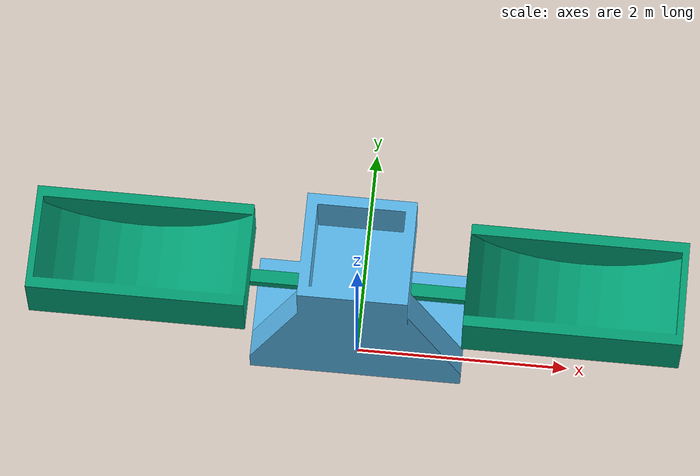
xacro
<?xml version="1.0"?>

<robot name="eval_weight_balance">

    <material name="OA">
        <color rgba="0.101960784 0.42745098 0.588235294 0.333"/>
    </material>

    <gazebo reference="link_base">
        <turnGravityOff>false</turnGravityOff>
    </gazebo>
    <gazebo reference="link_eval_weight_balance_body">
        <turnGravityOff>true</turnGravityOff>
    </gazebo>
    <gazebo reference="link_eval_weight_balance_suspension">
        <turnGravityOff>false</turnGravityOff>
    </gazebo>
    <gazebo>
        <plugin name="gazebo_ros_template" filename="libgazebo_ros_template.so"/>
        <plugin name="gazebo_ros_control" filename="libgazebo_ros_control.so">
        </plugin>
    </gazebo>

    <link name="link_base">
        <visual>
            <origin xyz="0.0 0.0 0.0"/>
            <geometry>
                <sphere radius="0.1"/>
            </geometry>
            <material name="OA"/>
        </visual>
        <inertial>
            <origin xyz="0.0 0.0 0.5" rpy="0.0 0.0 0.0"/>
            <mass value="10000.0"/>
            <inertia  ixx="100.0" ixy="0.0"  ixz="0.0"  iyy="100.0"  iyz="0.0"  izz="100.0"/>
        </inertial>
        <collision>
            <origin xyz="0.0 0.0 0.15" rpy="0.0 0.0 0.0"/>
            <geometry>
                <box size="5.0 2.0 0.3"/>
            </geometry>
        </collision>
        <collision> <!-- Ground Plate -->
            <origin xyz="0.0 0.0 2.05" rpy="0.0 0.0 0.0"/>
            <geometry>
                <box size="1.0 1.0 0.1"/>
            </geometry>
        </collision>
        <collision> <!-- Front Plate -->
            <origin xyz="0.45 0.0 2.35" rpy="0.0 0.0 0.0"/>
            <geometry>
                <box size="0.1 1.0 0.5"/>
            </geometry>
        </collision>
        <collision> <!-- Back Plate -->
            <origin xyz="-0.45 0.0 2.35" rpy="0.0 0.0 0.0"/>
            <geometry>
                <box size="0.1 1.0 0.5"/>
            </geometry>
        </collision>
        <collision> <!-- Left Plate -->
            <origin xyz="0.0 0.45 2.35" rpy="0.0 0.0 0.0"/>
            <geometry>
                <box size="0.8 0.1 0.5"/>
            </geometry>
        </collision>
        <collision> <!-- Right Plate -->
            <origin xyz="0.0 -0.45 2.35" rpy="0.0 0.0 0.0"/>
            <geometry>
                <box size="0.8 0.1 0.5"/>
            </geometry>
        </collision>
    </link>
    <link name="link_eval_weight_balance_body"> <!-- if links in between do not have physical properties JSP does not publish properly! -->
        <visual>
            <origin xyz="0.0 0.0 0.0"/>
            <geometry>
                <mesh filename="package://wai_oa_gazebo/resources/reps/eval_weight_balance/link_eval_weight_balance_body.dae"/>
            </geometry>
        </visual>
    </link>
    <link name="link_eval_weight_balance_suspension">
        <visual>
            <origin xyz="0.0 0.0 0.0"/>
            <geometry>
                <mesh filename="package://wai_oa_gazebo/resources/reps/eval_weight_balance/link_eval_weight_balance_suspension.dae"/>
            </geometry>
        </visual>
        <inertial>
            <origin xyz="0.0 0.0 0.0" rpy="0.0 0.0 0.0"/>
            <mass value="1.0"/>
            <inertia  ixx="1.0" ixy="0.0"  ixz="0.0"  iyy="1.0"  iyz="0.0"  izz="1.0"/>
        </inertial>
        <collision>
            <origin xyz="0.0 0.0 0.0" rpy="0.0 0.0 0.0"/>
            <geometry>
                <mesh filename="package://wai_oa_gazebo/resources/reps/eval_weight_balance/link_eval_weight_balance_suspension.dae"/>
            </geometry>
        </collision>
    </link>

    <joint name="joint_eval_weight_balance_body" type="fixed">
        <origin xyz="0.0 0.0 0.0" rpy="0.0 0.0 0.0"/>
        <parent link="link_base"/>
        <child link="link_eval_weight_balance_body"/>
    </joint>
    <joint name="joint_eval_weight_balance_suspension" type="revolute">
        <axis xyz="0 1 0" />
        <origin xyz="0.0 0.0 1.5" rpy="0.0 0.0 0.0"/>
        <parent link="link_base"/>
        <child link="link_eval_weight_balance_suspension"/>
        <limit lower="-0.4" upper="0.4" effort="1000.0" velocity="0.05"/>
        <dynamics damping="10000.0" friction="10000.0"/>
    </joint>

    <transmission name="trans_eval_weight_balance_suspension">
        <type>transmission_interface/SimpleTransmission</type>
        <joint name="joint_eval_weight_balance_suspension">
          <hardwareInterface>hardware_interface/EffortJointInterface</hardwareInterface>
        </joint>
        <actuator name="actuator_eval_weight_balance_suspension">
          <hardwareInterface>hardware_interface/EffortJointInterface</hardwareInterface>
          <mechanicalReduction>1</mechanicalReduction>
        </actuator>
    </transmission>

</robot>
